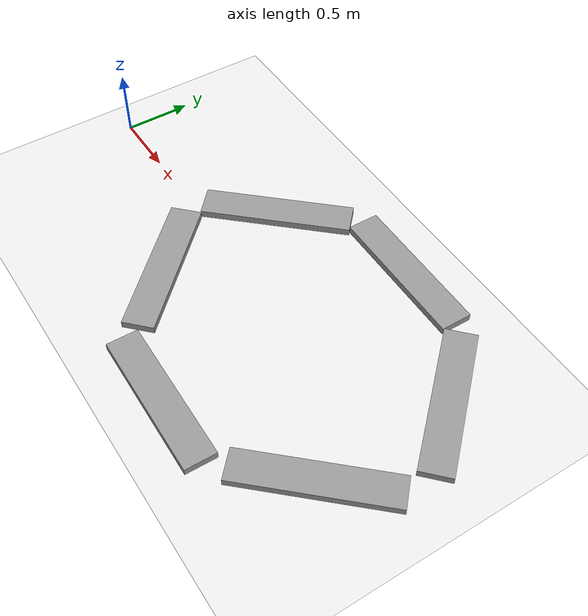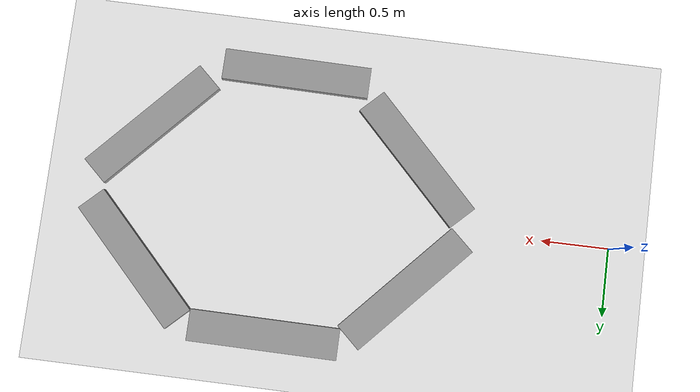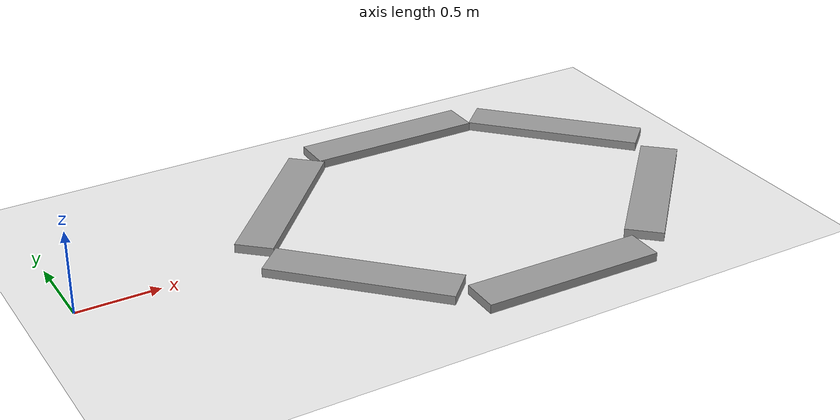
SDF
<sdf version="1.6">
 <world name="default">
  <light name="sun" type="directional">
   <pose>0 0 10 0 -0 0</pose>
   <diffuse>0.8 0.8 0.8 1</diffuse>
   <specular>0.2 0.2 0.2 1</specular>
   <attenuation>
    <range>1000</range>
    <constant>0.9</constant>
    <linear>0.01</linear>
    <quadratic>0.001</quadratic>
   </attenuation>
   <direction>-0.5 0.1 -0.9</direction>
  </light>
  <model name="ground_plane">
   <static>1</static>
   <link name="link">
    <collision name="collision">
     <geometry><plane><normal>0 0 1</normal><size>100 100</size></plane></geometry>
     <surface><friction><ode><mu>100</mu><mu2>50</mu2></ode></friction></surface>
    </collision>
    <visual name="visual">
     <cast_shadows>0</cast_shadows>
     <geometry><plane><normal>0 0 1</normal><size>100 100</size></plane></geometry>
     <material>
      <script><uri>file://media/materials/scripts/gazebo.material</uri><name>Gazebo/WhiteGlow</name></script>
     </material>
    </visual>
   </link>
  </model>
  <gravity>0 0 -9.8</gravity>
  <magnetic_field>6e-06 2.3e-05 -4.2e-05</magnetic_field>
  <atmosphere type="adiabatic"/>
  <physics name="default_physics" default="0" type="ode">
   <max_step_size>0.001</max_step_size>
   <real_time_factor>1</real_time_factor>
   <real_time_update_rate>1000</real_time_update_rate>
  </physics>
  <scene><ambient>0.4 0.4 0.4 1</ambient><background>0.7 0.7 0.7 1</background><shadows>1</shadows></scene>
  <spherical_coordinates>
   <surface_model>EARTH_WGS84</surface_model>
   <latitude_deg>0</latitude_deg>
   <longitude_deg>0</longitude_deg>
   <elevation>0</elevation>
   <heading_deg>0</heading_deg>
  </spherical_coordinates>
  <model name="unit_box">
   <pose>1.46243 0.477053 0.027184 -0 -0 -0.744235</pose>
   <link name="link">
    <inertial>
     <mass>1</mass>
     <inertia>
      <ixx>0.166667</ixx>
      <ixy>0</ixy>
      <ixz>0</ixz>
      <iyy>0.166667</iyy>
      <iyz>0</iyz>
      <izz>0.166667</izz>
     </inertia>
    </inertial>
    <collision name="collision">
     <geometry><box><size>0.230778 1.10323 0.0543684</size></box></geometry>
    </collision>
    <visual name="visual">
     <geometry><box><size>0.230778 1.10323 0.0543684</size></box></geometry>
     <material>
      <script><name>Gazebo/Grey</name><uri>file://media/materials/scripts/gazebo.material</uri></script>
     </material>
    </visual>
   </link>
  </model>
  <model name="unit_box_clone">
   <pose>1.49052 -0.483452 0.027184 0 0 -2.3681</pose>
   <link name="link">
    <inertial>
     <mass>1</mass>
     <inertia>
      <ixx>0.166667</ixx>
      <ixy>0</ixy>
      <ixz>0</ixz>
      <iyy>0.166667</iyy>
      <iyz>0</iyz>
      <izz>0.166667</izz>
     </inertia>
    </inertial>
    <collision name="collision"><geometry><box><size>0.230778 1.10323 0.054368</size></box></geometry></collision>
    <visual name="visual">
     <geometry><box><size>0.230778 1.10323 0.054368</size></box></geometry>
     <material>
      <script><name>Gazebo/Grey</name><uri>file://media/materials/scripts/gazebo.material</uri></script>
     </material>
    </visual>
   </link>
  </model>
  <model name="unit_box_clone_0">
   <pose>3.46695 0.505448 0.027184 0 -0 -2.38219</pose>
   <link name="link">
    <inertial>
     <mass>1</mass>
     <inertia>
      <ixx>0.166667</ixx>
      <ixy>0</ixy>
      <ixz>0</ixz>
      <iyy>0.166667</iyy>
      <iyz>0</iyz>
      <izz>0.166667</izz>
     </inertia>
    </inertial>
    <collision name="collision"><geometry><box><size>0.230778 1.10323 0.054368</size></box></geometry></collision>
    <visual name="visual">
     <geometry><box><size>0.230778 1.10323 0.054368</size></box></geometry>
     <material>
      <script><name>Gazebo/Grey</name><uri>file://media/materials/scripts/gazebo.material</uri></script>
     </material>
    </visual>
   </link>
  </model>
  <model name="unit_box_clone_1">
   <pose>3.47854 -0.503827 0.027184 0 0 -0.748339</pose>
   <link name="link">
    <inertial>
     <mass>1</mass>
     <inertia>
      <ixx>0.166667</ixx>
      <ixy>0</ixy>
      <ixz>0</ixz>
      <iyy>0.166667</iyy>
      <iyz>0</iyz>
      <izz>0.166667</izz>
     </inertia>
    </inertial>
    <collision name="collision"><geometry><box><size>0.230778 1.10323 0.054368</size></box></geometry></collision>
    <visual name="visual">
     <geometry><box><size>0.230778 1.10323 0.054368</size></box></geometry>
     <material>
      <script><name>Gazebo/Grey</name><uri>file://media/materials/scripts/gazebo.material</uri></script>
     </material>
    </visual>
   </link>
  </model>
  <model name="unit_box_clone_0_clone">
   <pose>2.45247 0.935803 0.027184 0 -0 -1.57754</pose>
   <link name="link">
    <inertial>
     <mass>1</mass>
     <inertia>
      <ixx>0.166667</ixx>
      <ixy>0</ixy>
      <ixz>0</ixz>
      <iyy>0.166667</iyy>
      <iyz>0</iyz>
      <izz>0.166667</izz>
     </inertia>
    </inertial>
    <collision name="collision"><geometry><box><size>0.230778 1.10323 0.054368</size></box></geometry></collision>
    <visual name="visual">
     <geometry><box><size>0.230778 1.10323 0.054368</size></box></geometry>
     <material>
      <script><name>Gazebo/Grey</name><uri>file://media/materials/scripts/gazebo.material</uri></script>
     </material>
    </visual>
   </link>
  </model>
  <model name="unit_box_clone_0_clone_0">
   <pose>2.46148 -1.01758 0.027184 0 -0 -1.5847</pose>
   <link name="link">
    <inertial>
     <mass>1</mass>
     <inertia>
      <ixx>0.166667</ixx>
      <ixy>0</ixy>
      <ixz>0</ixz>
      <iyy>0.166667</iyy>
      <iyz>0</iyz>
      <izz>0.166667</izz>
     </inertia>
    </inertial>
    <collision name="collision"><geometry><box><size>0.230778 1.10323 0.054368</size></box></geometry></collision>
    <visual name="visual">
     <geometry><box><size>0.230778 1.10323 0.054368</size></box></geometry>
     <material>
      <script><name>Gazebo/Grey</name><uri>file://media/materials/scripts/gazebo.material</uri></script>
     </material>
    </visual>
   </link>
  </model>
 </world>
</sdf>
